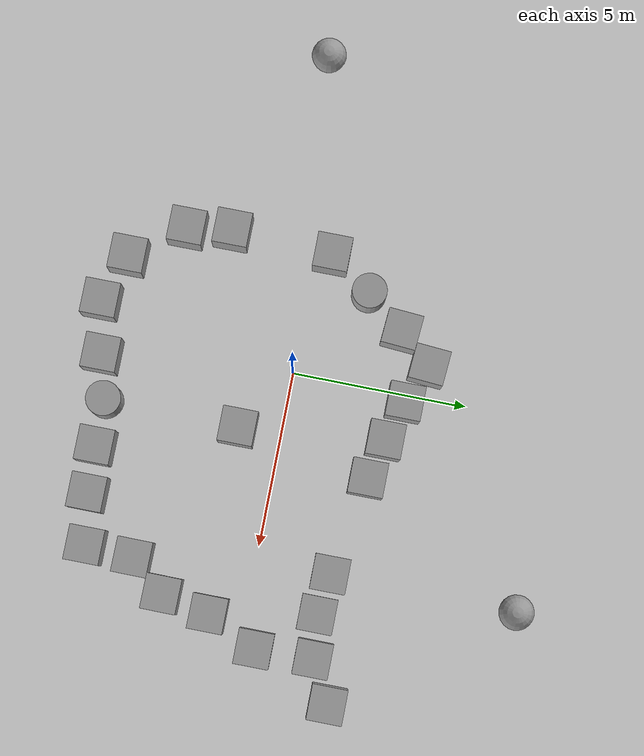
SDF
<sdf version="1.7">
 <world name="default">
  <light name="sun" type="directional">
   <pose>0 0 10 0 -0 0</pose>
   <diffuse>0.8 0.8 0.8 1</diffuse>
   <specular>0.2 0.2 0.2 1</specular>
   <attenuation>
    <range>1000</range>
    <constant>0.9</constant>
    <linear>0.01</linear>
    <quadratic>0.001</quadratic>
   </attenuation>
   <direction>-0.5 0.1 -0.9</direction>
   <spot><inner_angle>0</inner_angle><outer_angle>0</outer_angle><falloff>0</falloff></spot>
  </light>
  <model name="ground_plane">
   <static>1</static>
   <link name="link">
    <collision name="collision">
     <geometry><plane><normal>0 0 1</normal><size>100 100</size></plane></geometry>
     <surface>
      <contact><collide_bitmask>65535</collide_bitmask></contact>
      <friction><ode><mu>100</mu><mu2>50</mu2></ode></friction>
     </surface>
    </collision>
    <visual name="visual">
     <cast_shadows>0</cast_shadows>
     <geometry><plane><normal>0 0 1</normal><size>100 100</size></plane></geometry>
     <material>
      <script><uri>file://media/materials/scripts/gazebo.material</uri><name>Gazebo/Grey</name></script>
     </material>
    </visual>
   </link>
  </model>
  <gravity>0 0 -9.8</gravity>
  <magnetic_field>6e-06 2.3e-05 -4.2e-05</magnetic_field>
  <atmosphere type="adiabatic"/>
  <physics type="ode">
   <max_step_size>0.001</max_step_size>
   <real_time_factor>1</real_time_factor>
   <real_time_update_rate>1000</real_time_update_rate>
  </physics>
  <scene><ambient>0.4 0.4 0.4 1</ambient><background>0.7 0.7 0.7 1</background><shadows>1</shadows></scene>
  <audio><device>default</device></audio>
  <spherical_coordinates>
   <surface_model>EARTH_WGS84</surface_model>
   <latitude_deg>0</latitude_deg>
   <longitude_deg>0</longitude_deg>
   <elevation>0</elevation>
   <heading_deg>0</heading_deg>
  </spherical_coordinates>
  <model name="unit_box">
   <pose>-3.51195 0.449728 0.499995 0 -1e-05 0</pose>
   <link name="link">
    <inertial>
     <mass>1</mass>
     <inertia>
      <ixx>0.166667</ixx>
      <ixy>0</ixy>
      <ixz>0</ixz>
      <iyy>0.166667</iyy>
      <iyz>0</iyz>
      <izz>0.166667</izz>
     </inertia>
    </inertial>
    <collision name="collision"><geometry><box><size>1 1 1</size></box></geometry></collision>
    <visual name="visual">
     <geometry><box><size>1 1 1</size></box></geometry>
     <material>
      <script><name>Gazebo/Grey</name><uri>file://media/materials/scripts/gazebo.material</uri></script>
     </material>
    </visual>
   </link>
  </model>
  <model name="unit_cylinder">
   <pose>-2.61809 1.68687 0.499994 -4e-06 -3e-06 -0</pose>
   <link name="link">
    <inertial>
     <mass>1</mass>
     <inertia><ixx>0.145833</ixx><ixy>0</ixy><ixz>0</ixz><iyy>0.145833</iyy><iyz>0</iyz><izz>0.125</izz></inertia>
    </inertial>
    <collision name="collision">
     <geometry><cylinder><radius>0.5</radius><length>1</length></cylinder></geometry>
    </collision>
    <visual name="visual">
     <geometry><cylinder><radius>0.5</radius><length>1</length></cylinder></geometry>
     <material>
      <script><name>Gazebo/Grey</name><uri>file://media/materials/scripts/gazebo.material</uri></script>
     </material>
    </visual>
   </link>
  </model>
  <model name="unit_box_0">
   <pose>-1.72657 2.79275 0.5 0 0 -0.073302</pose>
   <link name="link">
    <inertial>
     <mass>1</mass>
     <inertia>
      <ixx>0.166667</ixx>
      <ixy>0</ixy>
      <ixz>0</ixz>
      <iyy>0.166667</iyy>
      <iyz>0</iyz>
      <izz>0.166667</izz>
     </inertia>
    </inertial>
    <collision name="collision"><geometry><box><size>1 1 1</size></box></geometry></collision>
    <visual name="visual">
     <geometry><box><size>1 1 1</size></box></geometry>
     <material>
      <script><name>Gazebo/Grey</name><uri>file://media/materials/scripts/gazebo.material</uri></script>
     </material>
    </visual>
   </link>
  </model>
  <model name="unit_box_1">
   <pose>0.250646 3.26587 0.499995 -1e-05 -0 -0</pose>
   <link name="link">
    <inertial>
     <mass>1</mass>
     <inertia>
      <ixx>0.166667</ixx>
      <ixy>0</ixy>
      <ixz>0</ixz>
      <iyy>0.166667</iyy>
      <iyz>0</iyz>
      <izz>0.166667</izz>
     </inertia>
    </inertial>
    <collision name="collision"><geometry><box><size>1 1 1</size></box></geometry></collision>
    <visual name="visual">
     <geometry><box><size>1 1 1</size></box></geometry>
     <material>
      <script><name>Gazebo/Grey</name><uri>file://media/materials/scripts/gazebo.material</uri></script>
     </material>
    </visual>
   </link>
  </model>
  <model name="unit_box_2">
   <pose>-0.886904 3.73554 0.5 0 -0 -0.073315</pose>
   <link name="link">
    <inertial>
     <mass>1</mass>
     <inertia>
      <ixx>0.166667</ixx>
      <ixy>0</ixy>
      <ixz>0</ixz>
      <iyy>0.166667</iyy>
      <iyz>0</iyz>
      <izz>0.166667</izz>
     </inertia>
    </inertial>
    <collision name="collision"><geometry><box><size>1 1 1</size></box></geometry></collision>
    <visual name="visual">
     <geometry><box><size>1 1 1</size></box></geometry>
     <material>
      <script><name>Gazebo/Grey</name><uri>file://media/materials/scripts/gazebo.material</uri></script>
     </material>
    </visual>
   </link>
  </model>
  <model name="unit_box_3">
   <pose>1.40981 2.9227 0.499995 -1e-05 -0 -0</pose>
   <link name="link">
    <inertial>
     <mass>1</mass>
     <inertia>
      <ixx>0.166667</ixx>
      <ixy>0</ixy>
      <ixz>0</ixz>
      <iyy>0.166667</iyy>
      <iyz>0</iyz>
      <izz>0.166667</izz>
     </inertia>
    </inertial>
    <collision name="collision"><geometry><box><size>1 1 1</size></box></geometry></collision>
    <visual name="visual">
     <geometry><box><size>1 1 1</size></box></geometry>
     <material>
      <script><name>Gazebo/Grey</name><uri>file://media/materials/scripts/gazebo.material</uri></script>
     </material>
    </visual>
   </link>
  </model>
  <model name="unit_box_4">
   <pose>2.56725 2.63928 0.499995 0 -1e-05 0</pose>
   <link name="link">
    <inertial>
     <mass>1</mass>
     <inertia>
      <ixx>0.166667</ixx>
      <ixy>0</ixy>
      <ixz>0</ixz>
      <iyy>0.166667</iyy>
      <iyz>0</iyz>
      <izz>0.166667</izz>
     </inertia>
    </inertial>
    <collision name="collision"><geometry><box><size>1 1 1</size></box></geometry></collision>
    <visual name="visual">
     <geometry><box><size>1 1 1</size></box></geometry>
     <material>
      <script><name>Gazebo/Grey</name><uri>file://media/materials/scripts/gazebo.material</uri></script>
     </material>
    </visual>
   </link>
  </model>
  <model name="unit_box_5">
   <pose>5.39798 2.11681 0.499995 -1e-05 -0 -0</pose>
   <link name="link">
    <inertial>
     <mass>1</mass>
     <inertia>
      <ixx>0.166667</ixx>
      <ixy>0</ixy>
      <ixz>0</ixz>
      <iyy>0.166667</iyy>
      <iyz>0</iyz>
      <izz>0.166667</izz>
     </inertia>
    </inertial>
    <collision name="collision"><geometry><box><size>1 1 1</size></box></geometry></collision>
    <visual name="visual">
     <geometry><box><size>1 1 1</size></box></geometry>
     <material>
      <script><name>Gazebo/Grey</name><uri>file://media/materials/scripts/gazebo.material</uri></script>
     </material>
    </visual>
   </link>
  </model>
  <model name="unit_box_6">
   <pose>6.55972 1.97158 0.499995 0 -1e-05 0</pose>
   <link name="link">
    <inertial>
     <mass>1</mass>
     <inertia>
      <ixx>0.166667</ixx>
      <ixy>0</ixy>
      <ixz>0</ixz>
      <iyy>0.166667</iyy>
      <iyz>0</iyz>
      <izz>0.166667</izz>
     </inertia>
    </inertial>
    <collision name="collision"><geometry><box><size>1 1 1</size></box></geometry></collision>
    <visual name="visual">
     <geometry><box><size>1 1 1</size></box></geometry>
     <material>
      <script><name>Gazebo/Grey</name><uri>file://media/materials/scripts/gazebo.material</uri></script>
     </material>
    </visual>
   </link>
  </model>
  <model name="unit_box_7">
   <pose>7.7831 2.08709 0.499995 -1e-05 -0 -0</pose>
   <link name="link">
    <inertial>
     <mass>1</mass>
     <inertia>
      <ixx>0.166667</ixx>
      <ixy>0</ixy>
      <ixz>0</ixz>
      <iyy>0.166667</iyy>
      <iyz>0</iyz>
      <izz>0.166667</izz>
     </inertia>
    </inertial>
    <collision name="collision"><geometry><box><size>1 1 1</size></box></geometry></collision>
    <visual name="visual">
     <geometry><box><size>1 1 1</size></box></geometry>
     <material>
      <script><name>Gazebo/Grey</name><uri>file://media/materials/scripts/gazebo.material</uri></script>
     </material>
    </visual>
   </link>
  </model>
  <model name="unit_box_8">
   <pose>8.93051 2.71384 0.499995 0 -1e-05 0</pose>
   <link name="link">
    <inertial>
     <mass>1</mass>
     <inertia>
      <ixx>0.166667</ixx>
      <ixy>0</ixy>
      <ixz>0</ixz>
      <iyy>0.166667</iyy>
      <iyz>0</iyz>
      <izz>0.166667</izz>
     </inertia>
    </inertial>
    <collision name="collision"><geometry><box><size>1 1 1</size></box></geometry></collision>
    <visual name="visual">
     <geometry><box><size>1 1 1</size></box></geometry>
     <material>
      <script><name>Gazebo/Grey</name><uri>file://media/materials/scripts/gazebo.material</uri></script>
     </material>
    </visual>
   </link>
  </model>
  <model name="unit_box_8_clone">
   <pose>-3.65133 -2.47454 0.499995 -1e-05 -0 -0</pose>
   <link name="link">
    <inertial>
     <mass>1</mass>
     <inertia>
      <ixx>0.166667</ixx>
      <ixy>0</ixy>
      <ixz>0</ixz>
      <iyy>0.166667</iyy>
      <iyz>0</iyz>
      <izz>0.166667</izz>
     </inertia>
    </inertial>
    <collision name="collision"><geometry><box><size>1 1 1</size></box></geometry></collision>
    <visual name="visual">
     <geometry><box><size>1 1 1</size></box></geometry>
     <material>
      <script><name>Gazebo/Grey</name><uri>file://media/materials/scripts/gazebo.material</uri></script>
     </material>
    </visual>
   </link>
  </model>
  <model name="unit_box_9">
   <pose>-3.46528 -3.75185 0.499995 0 -1e-05 0</pose>
   <link name="link">
    <inertial>
     <mass>1</mass>
     <inertia>
      <ixx>0.166667</ixx>
      <ixy>0</ixy>
      <ixz>0</ixz>
      <iyy>0.166667</iyy>
      <iyz>0</iyz>
      <izz>0.166667</izz>
     </inertia>
    </inertial>
    <collision name="collision"><geometry><box><size>1 1 1</size></box></geometry></collision>
    <visual name="visual">
     <geometry><box><size>1 1 1</size></box></geometry>
     <material>
      <script><name>Gazebo/Grey</name><uri>file://media/materials/scripts/gazebo.material</uri></script>
     </material>
    </visual>
   </link>
  </model>
  <model name="unit_box_10">
   <pose>-2.36027 -5.23459 0.499995 -1e-05 -0 -0</pose>
   <link name="link">
    <inertial>
     <mass>1</mass>
     <inertia>
      <ixx>0.166667</ixx>
      <ixy>0</ixy>
      <ixz>0</ixz>
      <iyy>0.166667</iyy>
      <iyz>0</iyz>
      <izz>0.166667</izz>
     </inertia>
    </inertial>
    <collision name="collision"><geometry><box><size>1 1 1</size></box></geometry></collision>
    <visual name="visual">
     <geometry><box><size>1 1 1</size></box></geometry>
     <material>
      <script><name>Gazebo/Grey</name><uri>file://media/materials/scripts/gazebo.material</uri></script>
     </material>
    </visual>
   </link>
  </model>
  <model name="unit_box_11">
   <pose>-0.963768 -5.73437 0.499995 0 -1e-05 0</pose>
   <link name="link">
    <inertial>
     <mass>1</mass>
     <inertia>
      <ixx>0.166667</ixx>
      <ixy>0</ixy>
      <ixz>0</ixz>
      <iyy>0.166667</iyy>
      <iyz>0</iyz>
      <izz>0.166667</izz>
     </inertia>
    </inertial>
    <collision name="collision"><geometry><box><size>1 1 1</size></box></geometry></collision>
    <visual name="visual">
     <geometry><box><size>1 1 1</size></box></geometry>
     <material>
      <script><name>Gazebo/Grey</name><uri>file://media/materials/scripts/gazebo.material</uri></script>
     </material>
    </visual>
   </link>
  </model>
  <model name="unit_box_12">
   <pose>0.547918 -5.40585 0.499995 -1e-05 -0 -0</pose>
   <link name="link">
    <inertial>
     <mass>1</mass>
     <inertia>
      <ixx>0.166667</ixx>
      <ixy>0</ixy>
      <ixz>0</ixz>
      <iyy>0.166667</iyy>
      <iyz>0</iyz>
      <izz>0.166667</izz>
     </inertia>
    </inertial>
    <collision name="collision"><geometry><box><size>1 1 1</size></box></geometry></collision>
    <visual name="visual">
     <geometry><box><size>1 1 1</size></box></geometry>
     <material>
      <script><name>Gazebo/Grey</name><uri>file://media/materials/scripts/gazebo.material</uri></script>
     </material>
    </visual>
   </link>
  </model>
  <model name="unit_cylinder_0">
   <pose>1.8122 -5.06417 0.499998 3e-06 -3e-06 0</pose>
   <link name="link">
    <inertial>
     <mass>1</mass>
     <inertia><ixx>0.145833</ixx><ixy>0</ixy><ixz>0</ixz><iyy>0.145833</iyy><iyz>0</iyz><izz>0.125</izz></inertia>
    </inertial>
    <collision name="collision">
     <geometry><cylinder><radius>0.5</radius><length>1</length></cylinder></geometry>
    </collision>
    <visual name="visual">
     <geometry><cylinder><radius>0.5</radius><length>1</length></cylinder></geometry>
     <material>
      <script><name>Gazebo/Grey</name><uri>file://media/materials/scripts/gazebo.material</uri></script>
     </material>
    </visual>
   </link>
  </model>
  <model name="unit_box_13">
   <pose>3.13386 -5.04427 0.499995 -1e-05 -0 -0</pose>
   <link name="link">
    <inertial>
     <mass>1</mass>
     <inertia>
      <ixx>0.166667</ixx>
      <ixy>0</ixy>
      <ixz>0</ixz>
      <iyy>0.166667</iyy>
      <iyz>0</iyz>
      <izz>0.166667</izz>
     </inertia>
    </inertial>
    <collision name="collision"><geometry><box><size>1 1 1</size></box></geometry></collision>
    <visual name="visual">
     <geometry><box><size>1 1 1</size></box></geometry>
     <material>
      <script><name>Gazebo/Grey</name><uri>file://media/materials/scripts/gazebo.material</uri></script>
     </material>
    </visual>
   </link>
  </model>
  <model name="unit_box_14">
   <pose>4.46794 -4.98689 0.499995 0 -1e-05 0</pose>
   <link name="link">
    <inertial>
     <mass>1</mass>
     <inertia>
      <ixx>0.166667</ixx>
      <ixy>0</ixy>
      <ixz>0</ixz>
      <iyy>0.166667</iyy>
      <iyz>0</iyz>
      <izz>0.166667</izz>
     </inertia>
    </inertial>
    <collision name="collision"><geometry><box><size>1 1 1</size></box></geometry></collision>
    <visual name="visual">
     <geometry><box><size>1 1 1</size></box></geometry>
     <material>
      <script><name>Gazebo/Grey</name><uri>file://media/materials/scripts/gazebo.material</uri></script>
     </material>
    </visual>
   </link>
  </model>
  <model name="unit_box_15">
   <pose>5.91573 -4.75479 0.499995 -1e-05 -0 -0</pose>
   <link name="link">
    <inertial>
     <mass>1</mass>
     <inertia>
      <ixx>0.166667</ixx>
      <ixy>0</ixy>
      <ixz>0</ixz>
      <iyy>0.166667</iyy>
      <iyz>0</iyz>
      <izz>0.166667</izz>
     </inertia>
    </inertial>
    <collision name="collision"><geometry><box><size>1 1 1</size></box></geometry></collision>
    <visual name="visual">
     <geometry><box><size>1 1 1</size></box></geometry>
     <material>
      <script><name>Gazebo/Grey</name><uri>file://media/materials/scripts/gazebo.material</uri></script>
     </material>
    </visual>
   </link>
  </model>
  <model name="unit_box_16">
   <pose>5.99516 -3.38179 0.499995 0 1e-05 -0.006042</pose>
   <link name="link">
    <inertial>
     <mass>1</mass>
     <inertia>
      <ixx>0.166667</ixx>
      <ixy>0</ixy>
      <ixz>0</ixz>
      <iyy>0.166667</iyy>
      <iyz>0</iyz>
      <izz>0.166667</izz>
     </inertia>
    </inertial>
    <collision name="collision"><geometry><box><size>1 1 1</size></box></geometry></collision>
    <visual name="visual">
     <geometry><box><size>1 1 1</size></box></geometry>
     <material>
      <script><name>Gazebo/Grey</name><uri>file://media/materials/scripts/gazebo.material</uri></script>
     </material>
    </visual>
   </link>
  </model>
  <model name="unit_box_17">
   <pose>6.83472 -2.38683 0.499995 -1e-05 -0 -0.006054</pose>
   <link name="link">
    <inertial>
     <mass>1</mass>
     <inertia>
      <ixx>0.166667</ixx>
      <ixy>0</ixy>
      <ixz>0</ixz>
      <iyy>0.166667</iyy>
      <iyz>0</iyz>
      <izz>0.166667</izz>
     </inertia>
    </inertial>
    <collision name="collision"><geometry><box><size>1 1 1</size></box></geometry></collision>
    <visual name="visual">
     <geometry><box><size>1 1 1</size></box></geometry>
     <material>
      <script><name>Gazebo/Grey</name><uri>file://media/materials/scripts/gazebo.material</uri></script>
     </material>
    </visual>
   </link>
  </model>
  <model name="unit_box_18">
   <pose>7.1214 -1.01187 0.499995 0 -1e-05 0</pose>
   <link name="link">
    <inertial>
     <mass>1</mass>
     <inertia>
      <ixx>0.166667</ixx>
      <ixy>0</ixy>
      <ixz>0</ixz>
      <iyy>0.166667</iyy>
      <iyz>0</iyz>
      <izz>0.166667</izz>
     </inertia>
    </inertial>
    <collision name="collision"><geometry><box><size>1 1 1</size></box></geometry></collision>
    <visual name="visual">
     <geometry><box><size>1 1 1</size></box></geometry>
     <material>
      <script><name>Gazebo/Grey</name><uri>file://media/materials/scripts/gazebo.material</uri></script>
     </material>
    </visual>
   </link>
  </model>
  <model name="unit_box_19">
   <pose>7.82197 0.431513 0.499995 -1e-05 -0 -0</pose>
   <link name="link">
    <inertial>
     <mass>1</mass>
     <inertia>
      <ixx>0.166667</ixx>
      <ixy>0</ixy>
      <ixz>0</ixz>
      <iyy>0.166667</iyy>
      <iyz>0</iyz>
      <izz>0.166667</izz>
     </inertia>
    </inertial>
    <collision name="collision"><geometry><box><size>1 1 1</size></box></geometry></collision>
    <visual name="visual">
     <geometry><box><size>1 1 1</size></box></geometry>
     <material>
      <script><name>Gazebo/Grey</name><uri>file://media/materials/scripts/gazebo.material</uri></script>
     </material>
    </visual>
   </link>
  </model>
  <model name="unit_sphere">
   <pose>5.44024 7.4249 0.5 0 -0 0</pose>
   <link name="link">
    <inertial>
     <mass>1</mass>
     <inertia><ixx>0.1</ixx><ixy>0</ixy><ixz>0</ixz><iyy>0.1</iyy><iyz>0</iyz><izz>0.1</izz></inertia>
    </inertial>
    <collision name="collision"><geometry><sphere><radius>0.5</radius></sphere></geometry></collision>
    <visual name="visual">
     <geometry><sphere><radius>0.5</radius></sphere></geometry>
     <material>
      <script><name>Gazebo/Grey</name><uri>file://media/materials/scripts/gazebo.material</uri></script>
     </material>
    </visual>
   </link>
  </model>
  <model name="unit_sphere_0">
   <pose>-9.20559 -0.75173 0.5 0 -0 0</pose>
   <link name="link">
    <inertial>
     <mass>1</mass>
     <inertia><ixx>0.1</ixx><ixy>0</ixy><ixz>0</ixz><iyy>0.1</iyy><iyz>0</iyz><izz>0.1</izz></inertia>
    </inertial>
    <collision name="collision"><geometry><sphere><radius>0.5</radius></sphere></geometry></collision>
    <visual name="visual">
     <geometry><sphere><radius>0.5</radius></sphere></geometry>
     <material>
      <script><name>Gazebo/Grey</name><uri>file://media/materials/scripts/gazebo.material</uri></script>
     </material>
    </visual>
   </link>
  </model>
  <model name="unit_box_20">
   <pose>1.84844 -1.21831 0.499995 0 1e-05 0</pose>
   <link name="link">
    <inertial>
     <mass>1</mass>
     <inertia>
      <ixx>0.166667</ixx>
      <ixy>0</ixy>
      <ixz>0</ixz>
      <iyy>0.166667</iyy>
      <iyz>0</iyz>
      <izz>0.166667</izz>
     </inertia>
    </inertial>
    <collision name="collision"><geometry><box><size>1 1 1</size></box></geometry></collision>
    <visual name="visual">
     <geometry><box><size>1 1 1</size></box></geometry>
     <material>
      <script><name>Gazebo/Grey</name><uri>file://media/materials/scripts/gazebo.material</uri></script>
     </material>
    </visual>
   </link>
  </model>
 </world>
</sdf>
